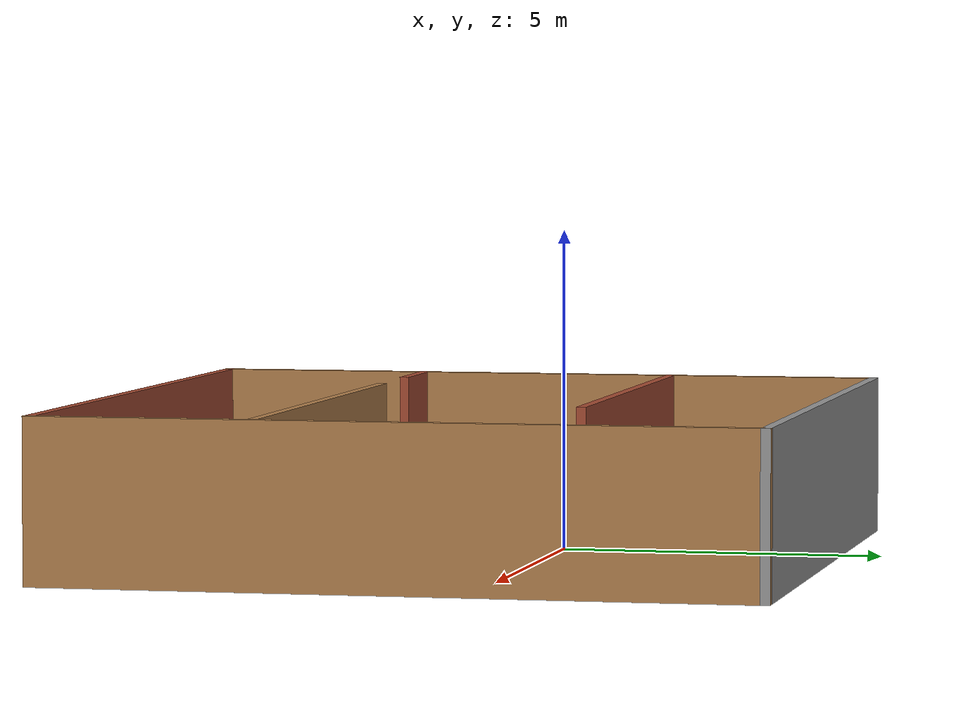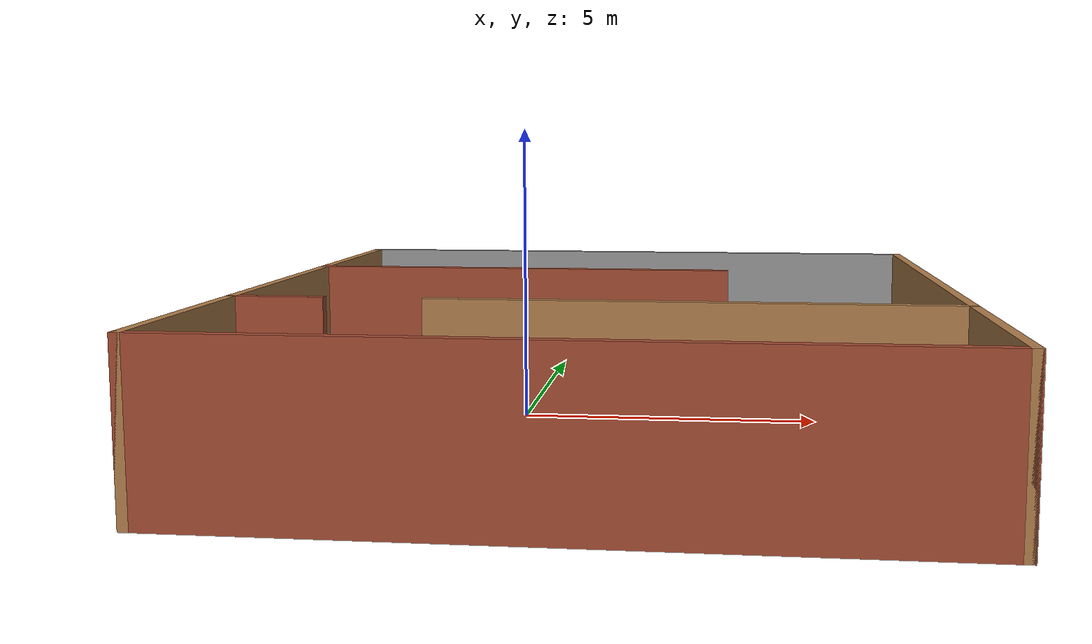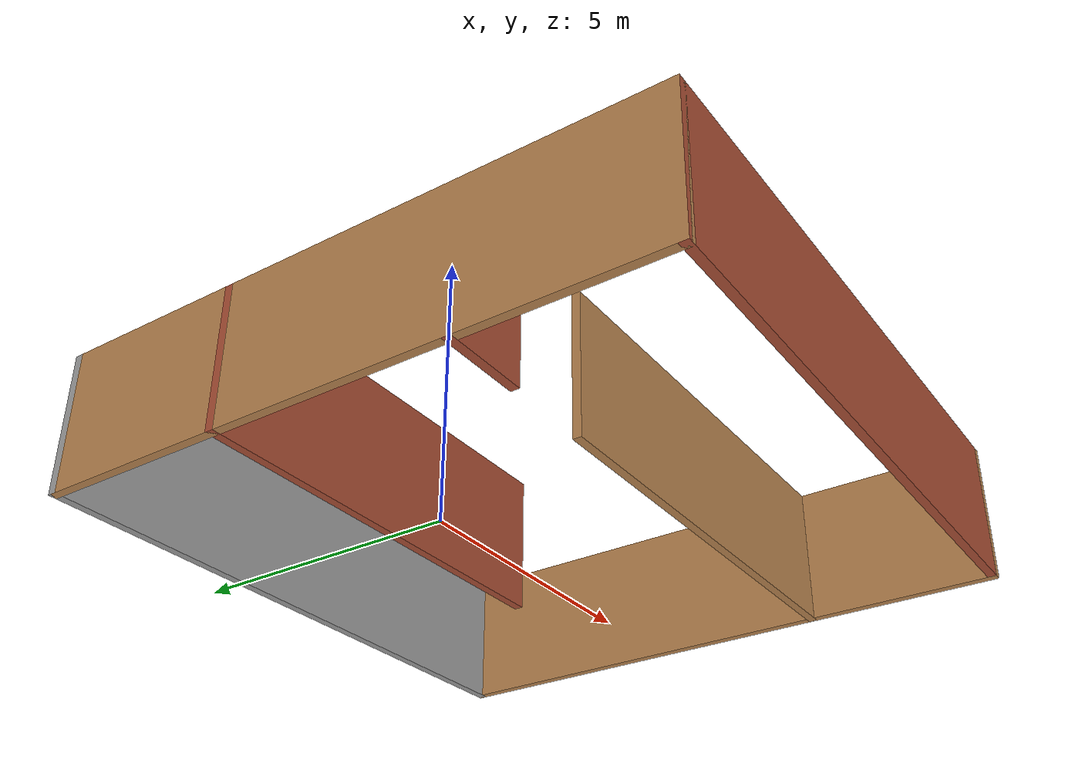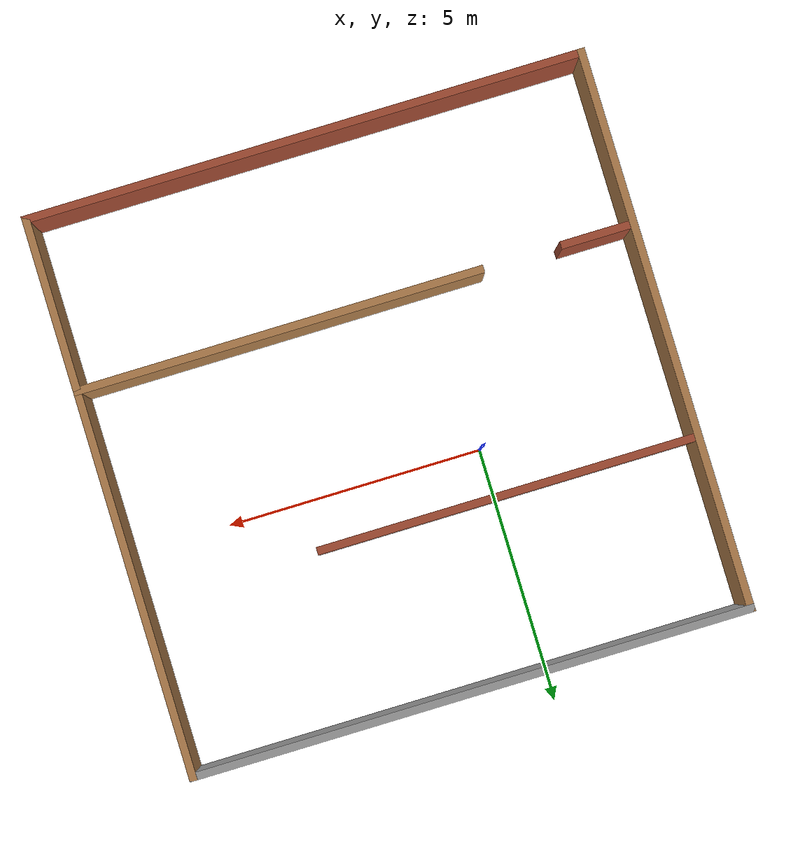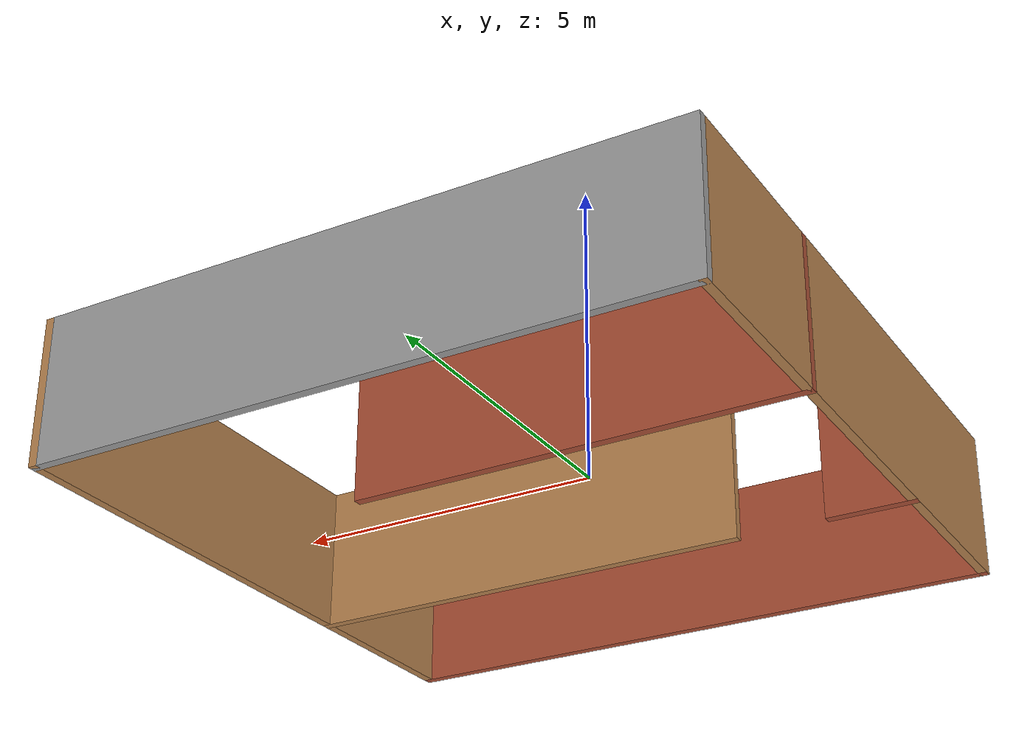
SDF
<?xml version='1.0'?>
<sdf version='1.7'>
  <model name='mazeTextureDoor'>
    <pose>1.505 -1.105 0 0 -0 0</pose>
    <link name='Wall_0'>
      <collision name='Wall_0_Collision'>
        <geometry>
          <box>
            <size>11 0.15 2.5</size>
          </box>
        </geometry>
        <pose>0 0 1.25 0 -0 0</pose>
      </collision>
      <visual name='Wall_0_Visual'>
        <pose>0 0 1.25 0 -0 0</pose>
        <geometry>
          <box>
            <size>11 0.15 2.5</size>
          </box>
        </geometry>
        <material>
          <script>
            <uri>file://media/materials/scripts/gazebo.material</uri>
            <name>Gazebo/Bricks</name>
          </script>
          <ambient>1 1 1 1</ambient>
        </material>
        <meta>
          <layer>0</layer>
        </meta>
      </visual>
      <pose>0 -5.425 0 0 -0 0</pose>
    </link>
    <link name='Wall_13'>
      <collision name='Wall_13_Collision'>
        <geometry>
          <box>
            <size>1.5 0.15 2.5</size>
          </box>
        </geometry>
        <pose>0 0 1.25 0 -0 0</pose>
      </collision>
      <visual name='Wall_13_Visual'>
        <pose>0 0 1.25 0 -0 0</pose>
        <geometry>
          <box>
            <size>1.5 0.15 2.5</size>
          </box>
        </geometry>
        <material>
          <script>
            <uri>file://media/materials/scripts/gazebo.material</uri>
            <name>Gazebo/Bricks</name>
          </script>
          <ambient>1 1 1 1</ambient>
        </material>
        <meta>
          <layer>0</layer>
        </meta>
      </visual>
      <pose>-4.75 -2.075 0 0 -0 0</pose>
    </link>
    <link name='Wall_17'>
      <collision name='Wall_17_Collision'>
        <geometry>
          <box>
            <size>8 0.15 2.5</size>
          </box>
        </geometry>
        <pose>0 0 1.25 0 -0 0</pose>
      </collision>
      <visual name='Wall_17_Visual'>
        <pose>0 0 1.25 0 -0 0</pose>
        <geometry>
          <box>
            <size>8 0.15 2.5</size>
          </box>
        </geometry>
        <material>
          <script>
            <uri>file://media/materials/scripts/gazebo.material</uri>
            <name>Gazebo/Wood</name>
          </script>
          <ambient>1 1 1 1</ambient>
        </material>
        <meta>
          <layer>0</layer>
        </meta>
      </visual>
      <pose>1.5 -2.075 0 0 -0 3.14159</pose>
    </link>
    <link name='Wall_2'>
      <collision name='Wall_2_Collision'>
        <geometry>
          <box>
            <size>11 0.15 2.5</size>
          </box>
        </geometry>
        <pose>0 0 1.25 0 -0 0</pose>
      </collision>
      <visual name='Wall_2_Visual'>
        <pose>0 0 1.25 0 -0 0</pose>
        <geometry>
          <box>
            <size>11 0.15 2.5</size>
          </box>
        </geometry>
        <material>
          <script>
            <uri>file://media/materials/scripts/gazebo.material</uri>
            <name>Gazebo/Wood</name>
          </script>
          <ambient>1 1 1 1</ambient>
        </material>
        <meta>
          <layer>0</layer>
        </meta>
      </visual>
      <pose>5.425 0 0 0 -0 1.5708</pose>
    </link>
    <link name='Wall_3'>
      <collision name='Wall_3_Collision'>
        <geometry>
          <box>
            <size>11 0.15 2.5</size>
          </box>
        </geometry>
        <pose>0 0 1.25 0 -0 0</pose>
      </collision>
      <visual name='Wall_3_Visual'>
        <pose>0 0 1.25 0 -0 0</pose>
        <geometry>
          <box>
            <size>11 0.15 2.5</size>
          </box>
        </geometry>
        <material>
          <script>
            <uri>file://media/materials/scripts/gazebo.material</uri>
            <name>Gazebo/Grey</name>
          </script>
          <ambient>1 1 1 1</ambient>
        </material>
        <meta>
          <layer>0</layer>
        </meta>
      </visual>
      <pose>0 5.425 0 0 -0 3.14159</pose>
    </link>
    <link name='Wall_4'>
      <collision name='Wall_4_Collision'>
        <geometry>
          <box>
            <size>11 0.15 2.5</size>
          </box>
        </geometry>
        <pose>0 0 1.25 0 -0 0</pose>
      </collision>
      <visual name='Wall_4_Visual'>
        <pose>0 0 1.25 0 -0 0</pose>
        <geometry>
          <box>
            <size>11 0.15 2.5</size>
          </box>
        </geometry>
        <material>
          <script>
            <uri>file://media/materials/scripts/gazebo.material</uri>
            <name>Gazebo/Wood</name>
          </script>
          <ambient>1 1 1 1</ambient>
        </material>
        <meta>
          <layer>0</layer>
        </meta>
      </visual>
      <pose>-5.425 0 0 0 -0 -1.5708</pose>
    </link>
    <link name='Wall_7'>
      <collision name='Wall_7_Collision'>
        <geometry>
          <box>
            <size>7.5 0.15 2.5</size>
          </box>
        </geometry>
        <pose>0 0 1.25 0 -0 0</pose>
      </collision>
      <visual name='Wall_7_Visual'>
        <pose>0 0 1.25 0 -0 0</pose>
        <geometry>
          <box>
            <size>7.5 0.15 2.5</size>
          </box>
        </geometry>
        <material>
          <script>
            <uri>file://media/materials/scripts/gazebo.material</uri>
            <name>Gazebo/Bricks</name>
          </script>
          <ambient>1 1 1 1</ambient>
        </material>
        <meta>
          <layer>0</layer>
        </meta>
      </visual>
      <pose>-1.75 2.075 0 0 -0 0</pose>
    </link>
    <static>1</static>
  </model>
</sdf>
